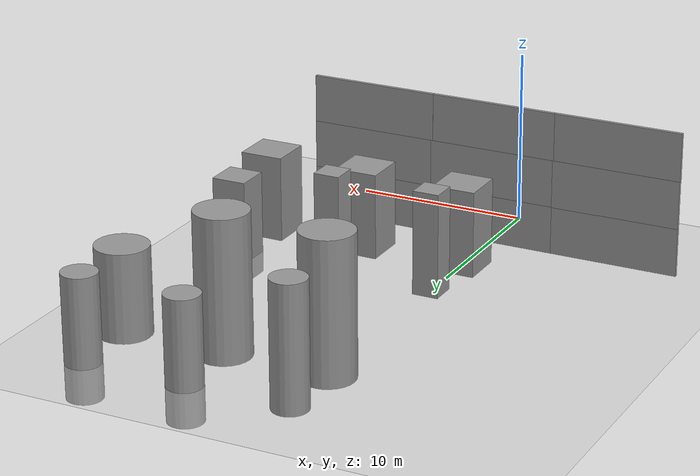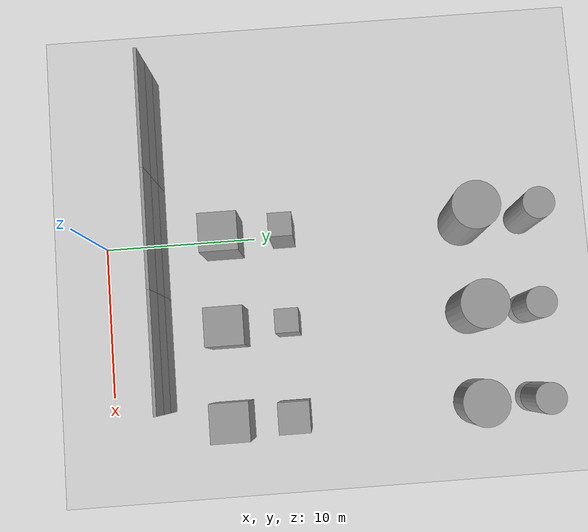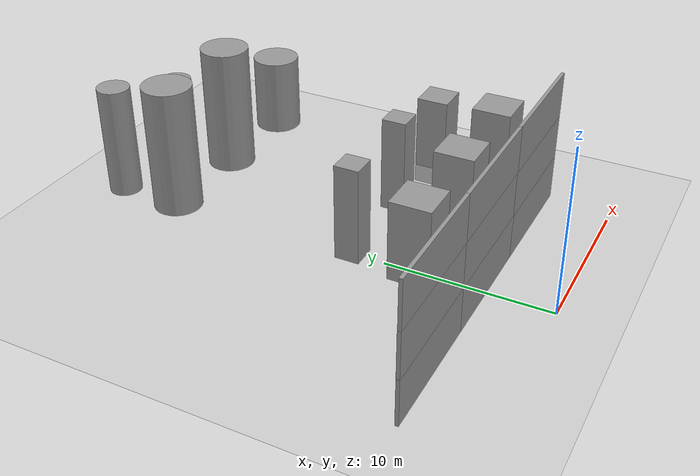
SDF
<sdf version="1.6">
 <world name="default">
  <model name="ground_plane">
   <static>1</static>
   <link name="link">
    <collision name="collision">
     <geometry><plane><normal>0 0 1</normal><size>100 100</size></plane></geometry>
     <surface>
      <contact><collide_bitmask>65535</collide_bitmask></contact>
      <friction><ode><mu>100</mu><mu2>50</mu2></ode></friction>
     </surface>
    </collision>
    <visual name="visual">
     <cast_shadows>0</cast_shadows>
     <geometry><plane><normal>0 0 1</normal><size>100 100</size></plane></geometry>
     <material>
      <script><uri>file://media/materials/scripts/gazebo.material</uri><name>Gazebo/Grey</name></script>
     </material>
    </visual>
   </link>
  </model>
  <model name="grey wall 1">
   <static>1</static>
   <link name="link">
    <pose>0 0 1.4 0 -0 0</pose>
    <collision name="collision"><geometry><box><size>7.5 0.2 2.8</size></box></geometry></collision>
    <visual name="visual">
     <cast_shadows>0</cast_shadows>
     <geometry><box><size>7.5 0.2 2.8</size></box></geometry>
     <material>
      <script>
       <uri>model://grey_wall/materials/scripts</uri>
       <uri>model://grey_wall/materials/textures</uri>
       <name>vrc/grey_wall</name>
      </script>
     </material>
    </visual>
   </link>
   <pose>0.05 4 0 0 -0 0</pose>
  </model>
  <model name="grey wall 3">
   <static>1</static>
   <link name="link">
    <pose>0 0 1.4 0 -0 0</pose>
    <collision name="collision"><geometry><box><size>7.5 0.2 2.8</size></box></geometry></collision>
    <visual name="visual">
     <cast_shadows>0</cast_shadows>
     <geometry><box><size>7.5 0.2 2.8</size></box></geometry>
     <material>
      <script>
       <uri>model://grey_wall/materials/scripts</uri>
       <uri>model://grey_wall/materials/textures</uri>
       <name>vrc/grey_wall</name>
      </script>
     </material>
    </visual>
   </link>
   <pose>0.05 4 2.78 0 -0 0</pose>
  </model>
  <model name="grey wall 5">
   <static>1</static>
   <link name="link">
    <pose>0 0 1.4 0 -0 0</pose>
    <collision name="collision"><geometry><box><size>7.5 0.2 2.8</size></box></geometry></collision>
    <visual name="visual">
     <cast_shadows>0</cast_shadows>
     <geometry><box><size>7.5 0.2 2.8</size></box></geometry>
     <material>
      <script>
       <uri>model://grey_wall/materials/scripts</uri>
       <uri>model://grey_wall/materials/textures</uri>
       <name>vrc/grey_wall</name>
      </script>
     </material>
    </visual>
   </link>
   <pose>7.44 4 0 0 -0 0</pose>
  </model>
  <model name="grey wall 7">
   <static>1</static>
   <link name="link">
    <pose>0 0 1.4 0 -0 0</pose>
    <collision name="collision"><geometry><box><size>7.5 0.2 2.8</size></box></geometry></collision>
    <visual name="visual">
     <cast_shadows>0</cast_shadows>
     <geometry><box><size>7.5 0.2 2.8</size></box></geometry>
     <material>
      <script>
       <uri>model://grey_wall/materials/scripts</uri>
       <uri>model://grey_wall/materials/textures</uri>
       <name>vrc/grey_wall</name>
      </script>
     </material>
    </visual>
   </link>
   <pose>7.44 4 2.78 0 -0 0</pose>
  </model>
  <model name="grey wall 9">
   <static>1</static>
   <link name="link">
    <pose>0 0 1.4 0 -0 0</pose>
    <collision name="collision"><geometry><box><size>7.5 0.2 2.8</size></box></geometry></collision>
    <visual name="visual">
     <cast_shadows>0</cast_shadows>
     <geometry><box><size>7.5 0.2 2.8</size></box></geometry>
     <material>
      <script>
       <uri>model://grey_wall/materials/scripts</uri>
       <uri>model://grey_wall/materials/textures</uri>
       <name>vrc/grey_wall</name>
      </script>
     </material>
    </visual>
   </link>
   <pose>-7.44 4 0 0 -0 0</pose>
  </model>
  <model name="grey wall 11">
   <static>1</static>
   <link name="link">
    <pose>0 0 1.4 0 -0 0</pose>
    <collision name="collision"><geometry><box><size>7.5 0.2 2.8</size></box></geometry></collision>
    <visual name="visual">
     <cast_shadows>0</cast_shadows>
     <geometry><box><size>7.5 0.2 2.8</size></box></geometry>
     <material>
      <script>
       <uri>model://grey_wall/materials/scripts</uri>
       <uri>model://grey_wall/materials/textures</uri>
       <name>vrc/grey_wall</name>
      </script>
     </material>
    </visual>
   </link>
   <pose>-7.44 4 2.78 0 -0 0</pose>
  </model>
  <model name="large_box_0">
   <static>1</static>
   <pose>0 8 2.5 0 -0 0</pose>
   <link name="link">
    <inertial>
     <mass>1</mass>
     <inertia><ixx>0.1</ixx><ixy>0</ixy><ixz>0</ixz><iyy>0.1</iyy><iyz>0</iyz><izz>0.1</izz></inertia>
    </inertial>
    <collision name="collision"><geometry><box><size>2.5 2.5 5</size></box></geometry></collision>
    <visual name="visual">
     <geometry><box><size>2.5 2.5 5</size></box></geometry>
     <material>
      <script><name>Gazebo/Grey</name><uri>file://media/materials/scripts/gazebo.material</uri></script>
     </material>
    </visual>
   </link>
  </model>
  <model name="large_box_1">
   <static>1</static>
   <pose>6 8 2.5 0 -0 0</pose>
   <link name="link">
    <inertial>
     <mass>1</mass>
     <inertia><ixx>0.1</ixx><ixy>0</ixy><ixz>0</ixz><iyy>0.1</iyy><iyz>0</iyz><izz>0.1</izz></inertia>
    </inertial>
    <collision name="collision"><geometry><box><size>2.5 2.5 5</size></box></geometry></collision>
    <visual name="visual">
     <geometry><box><size>2.5 2.5 5</size></box></geometry>
     <material>
      <script><name>Gazebo/Grey</name><uri>file://media/materials/scripts/gazebo.material</uri></script>
     </material>
    </visual>
   </link>
  </model>
  <model name="large_box_2">
   <static>1</static>
   <pose>12 8 2.5 0 -0 0</pose>
   <link name="link">
    <inertial>
     <mass>1</mass>
     <inertia><ixx>0.1</ixx><ixy>0</ixy><ixz>0</ixz><iyy>0.1</iyy><iyz>0</iyz><izz>0.1</izz></inertia>
    </inertial>
    <collision name="collision"><geometry><box><size>2.5 2.5 5</size></box></geometry></collision>
    <visual name="visual">
     <geometry><box><size>2.5 2.5 5</size></box></geometry>
     <material>
      <script><name>Gazebo/Grey</name><uri>file://media/materials/scripts/gazebo.material</uri></script>
     </material>
    </visual>
   </link>
  </model>
  <model name="medium_box_0">
   <static>1</static>
   <pose>0 12 3 0 -0 0</pose>
   <link name="link">
    <inertial>
     <mass>1</mass>
     <inertia><ixx>0.1</ixx><ixy>0</ixy><ixz>0</ixz><iyy>0.1</iyy><iyz>0</iyz><izz>0.1</izz></inertia>
    </inertial>
    <collision name="collision"><geometry><box><size>1.5 1.5 6</size></box></geometry></collision>
    <visual name="visual">
     <geometry><box><size>1.5 1.5 6</size></box></geometry>
     <material>
      <script><name>Gazebo/Grey</name><uri>file://media/materials/scripts/gazebo.material</uri></script>
     </material>
    </visual>
   </link>
  </model>
  <model name="medium_box_1">
   <static>1</static>
   <pose>6 12 3 0 -0 0</pose>
   <link name="link">
    <inertial>
     <mass>1</mass>
     <inertia><ixx>0.1</ixx><ixy>0</ixy><ixz>0</ixz><iyy>0.1</iyy><iyz>0</iyz><izz>0.1</izz></inertia>
    </inertial>
    <collision name="collision"><geometry><box><size>1.5 1.5 6</size></box></geometry></collision>
    <visual name="visual">
     <geometry><box><size>1.5 1.5 6</size></box></geometry>
     <material>
      <script><name>Gazebo/Grey</name><uri>file://media/materials/scripts/gazebo.material</uri></script>
     </material>
    </visual>
   </link>
  </model>
  <model name="medium_box_2">
   <static>1</static>
   <pose>12 12 1.75 0 -0 0</pose>
   <link name="link">
    <inertial>
     <mass>1</mass>
     <inertia><ixx>0.1</ixx><ixy>0</ixy><ixz>0</ixz><iyy>0.1</iyy><iyz>0</iyz><izz>0.1</izz></inertia>
    </inertial>
    <collision name="collision"><geometry><box><size>2 2 6</size></box></geometry></collision>
    <visual name="visual">
     <geometry><box><size>2 2 6</size></box></geometry>
     <material>
      <script><name>Gazebo/Grey</name><uri>file://media/materials/scripts/gazebo.material</uri></script>
     </material>
    </visual>
   </link>
  </model>
  <model name="large_cylinder_0">
   <static>1</static>
   <pose>0 24 4 0 -0 0</pose>
   <link name="link">
    <inertial>
     <mass>1</mass>
     <inertia><ixx>0.1</ixx><ixy>0</ixy><ixz>0</ixz><iyy>0.1</iyy><iyz>0</iyz><izz>0.1</izz></inertia>
    </inertial>
    <collision name="collision">
     <geometry><cylinder><radius>1.5</radius><length>8</length></cylinder></geometry>
    </collision>
    <visual name="visual">
     <geometry><cylinder><radius>1.5</radius><length>8</length></cylinder></geometry>
     <material>
      <script><name>Gazebo/Grey</name><uri>file://media/materials/scripts/gazebo.material</uri></script>
     </material>
    </visual>
   </link>
  </model>
  <model name="large_cylinder_1">
   <static>1</static>
   <pose>6 24 4 0 -0 0</pose>
   <link name="link">
    <inertial>
     <mass>1</mass>
     <inertia><ixx>0.1</ixx><ixy>0</ixy><ixz>0</ixz><iyy>0.1</iyy><iyz>0</iyz><izz>0.1</izz></inertia>
    </inertial>
    <collision name="collision">
     <geometry><cylinder><radius>1.5</radius><length>8</length></cylinder></geometry>
    </collision>
    <visual name="visual">
     <geometry><cylinder><radius>1.5</radius><length>8</length></cylinder></geometry>
     <material>
      <script><name>Gazebo/Grey</name><uri>file://media/materials/scripts/gazebo.material</uri></script>
     </material>
    </visual>
   </link>
  </model>
  <model name="large_cylinder_2">
   <static>1</static>
   <pose>12 24 2.5 0 -0 0</pose>
   <link name="link">
    <inertial>
     <mass>1</mass>
     <inertia><ixx>0.1</ixx><ixy>0</ixy><ixz>0</ixz><iyy>0.1</iyy><iyz>0</iyz><izz>0.1</izz></inertia>
    </inertial>
    <collision name="collision">
     <geometry><cylinder><radius>1.5</radius><length>5</length></cylinder></geometry>
    </collision>
    <visual name="visual">
     <geometry><cylinder><radius>1.5</radius><length>5</length></cylinder></geometry>
     <material>
      <script><name>Gazebo/Grey</name><uri>file://media/materials/scripts/gazebo.material</uri></script>
     </material>
    </visual>
   </link>
  </model>
  <model name="medium_cylinder_0">
   <static>1</static>
   <pose>0 28 3.5 0 -0 0</pose>
   <link name="link">
    <inertial>
     <mass>1</mass>
     <inertia><ixx>0.1</ixx><ixy>0</ixy><ixz>0</ixz><iyy>0.1</iyy><iyz>0</iyz><izz>0.1</izz></inertia>
    </inertial>
    <collision name="collision">
     <geometry><cylinder><radius>1</radius><length>8</length></cylinder></geometry>
    </collision>
    <visual name="visual">
     <geometry><cylinder><radius>1</radius><length>7</length></cylinder></geometry>
     <material>
      <script><name>Gazebo/Grey</name><uri>file://media/materials/scripts/gazebo.material</uri></script>
     </material>
    </visual>
   </link>
  </model>
  <model name="medium_cylinder_1">
   <static>1</static>
   <pose>6 28 1.5 0 -0 0</pose>
   <link name="link">
    <inertial>
     <mass>1</mass>
     <inertia><ixx>0.1</ixx><ixy>0</ixy><ixz>0</ixz><iyy>0.1</iyy><iyz>0</iyz><izz>0.1</izz></inertia>
    </inertial>
    <collision name="collision">
     <geometry><cylinder><radius>1</radius><length>7</length></cylinder></geometry>
    </collision>
    <visual name="visual">
     <geometry><cylinder><radius>1</radius><length>7</length></cylinder></geometry>
     <material>
      <script><name>Gazebo/Grey</name><uri>file://media/materials/scripts/gazebo.material</uri></script>
     </material>
    </visual>
   </link>
  </model>
  <model name="medium_cylinder_2">
   <static>1</static>
   <pose>12 28 1.5 0 -0 0</pose>
   <link name="link">
    <inertial>
     <mass>1</mass>
     <inertia><ixx>0.1</ixx><ixy>0</ixy><ixz>0</ixz><iyy>0.1</iyy><iyz>0</iyz><izz>0.1</izz></inertia>
    </inertial>
    <collision name="collision">
     <geometry><cylinder><radius>1</radius><length>3</length></cylinder></geometry>
    </collision>
    <visual name="visual">
     <geometry><cylinder><radius>1</radius><length>7</length></cylinder></geometry>
     <material>
      <script><name>Gazebo/Grey</name><uri>file://media/materials/scripts/gazebo.material</uri></script>
     </material>
    </visual>
   </link>
  </model>
  <model name="grey wall 3_clone">
   <static>1</static>
   <link name="link">
    <pose>0 0 1.4 0 -0 0</pose>
    <collision name="collision"><geometry><box><size>7.5 0.2 2.8</size></box></geometry></collision>
    <visual name="visual">
     <cast_shadows>0</cast_shadows>
     <geometry><box><size>7.5 0.2 2.8</size></box></geometry>
     <material>
      <script>
       <uri>model://grey_wall/materials/scripts</uri>
       <uri>model://grey_wall/materials/textures</uri>
       <name>vrc/grey_wall</name>
      </script>
     </material>
    </visual>
   </link>
   <pose>0.003106 3.98858 5.5531 0 -0 0</pose>
  </model>
  <model name="grey wall 3_clone_clone">
   <static>1</static>
   <link name="link">
    <pose>0 0 1.4 0 -0 0</pose>
    <collision name="collision"><geometry><box><size>7.5 0.2 2.8</size></box></geometry></collision>
    <visual name="visual">
     <cast_shadows>0</cast_shadows>
     <geometry><box><size>7.5 0.2 2.8</size></box></geometry>
     <material>
      <script>
       <uri>model://grey_wall/materials/scripts</uri>
       <uri>model://grey_wall/materials/textures</uri>
       <name>vrc/grey_wall</name>
      </script>
     </material>
    </visual>
   </link>
   <pose>7.43672 3.99551 5.5531 0 -0 0</pose>
  </model>
  <model name="grey wall 3_clone_clone_0">
   <static>1</static>
   <link name="link">
    <pose>0 0 1.4 0 -0 0</pose>
    <collision name="collision"><geometry><box><size>7.5 0.2 2.8</size></box></geometry></collision>
    <visual name="visual">
     <cast_shadows>0</cast_shadows>
     <geometry><box><size>7.5 0.2 2.8</size></box></geometry>
     <material>
      <script>
       <uri>model://grey_wall/materials/scripts</uri>
       <uri>model://grey_wall/materials/textures</uri>
       <name>vrc/grey_wall</name>
      </script>
     </material>
    </visual>
   </link>
   <pose>-7.44915 3.98372 5.5531 0 -0 0</pose>
  </model>
 </world>
</sdf>
